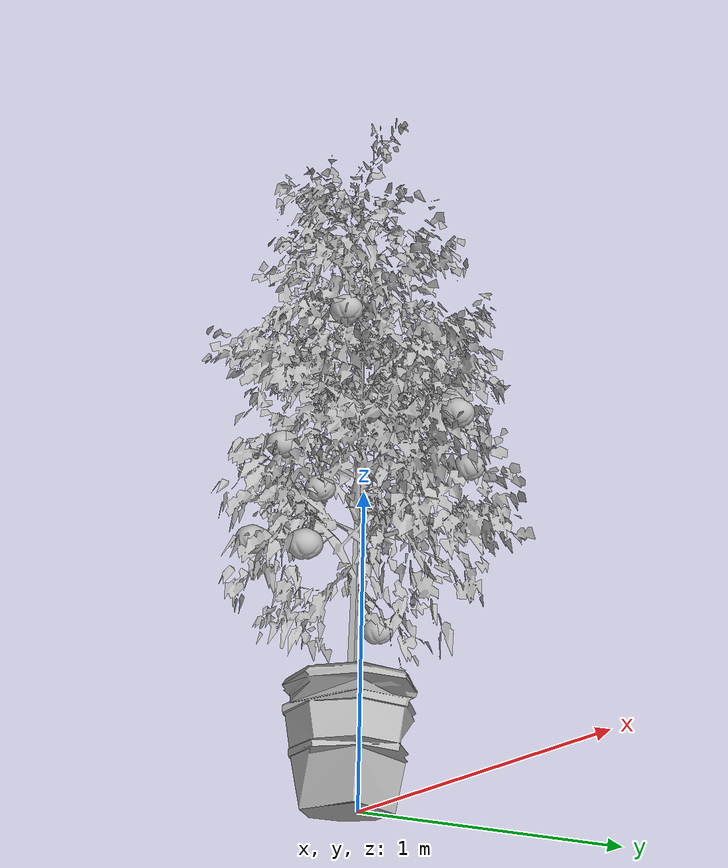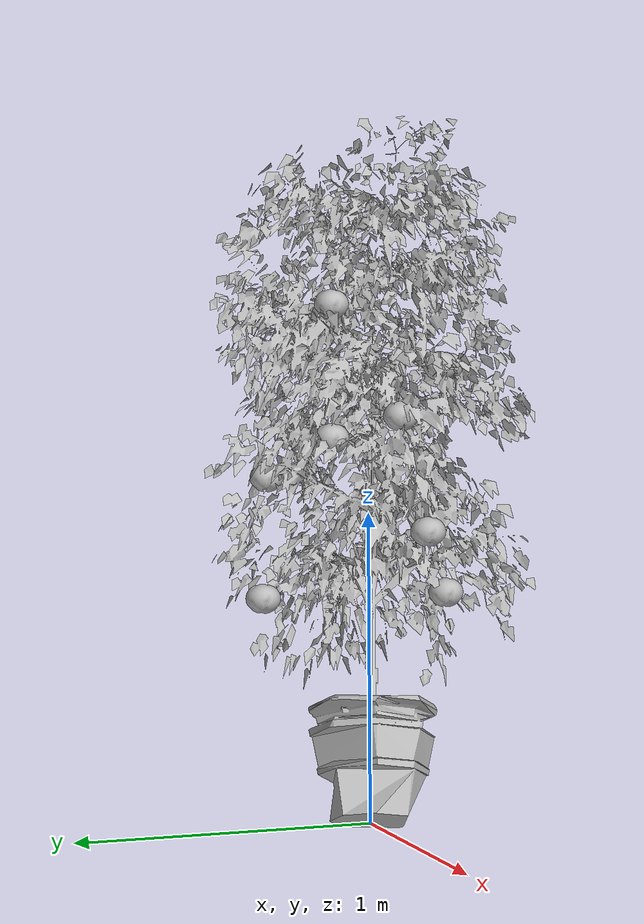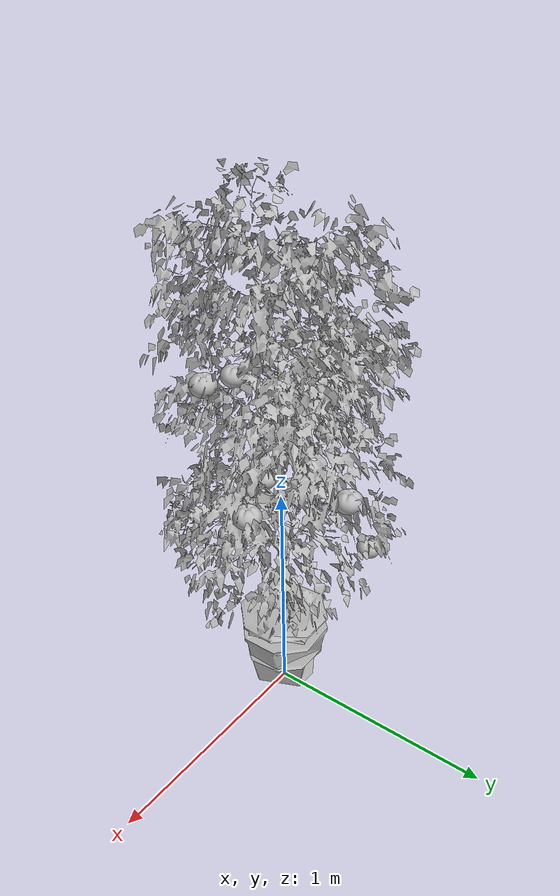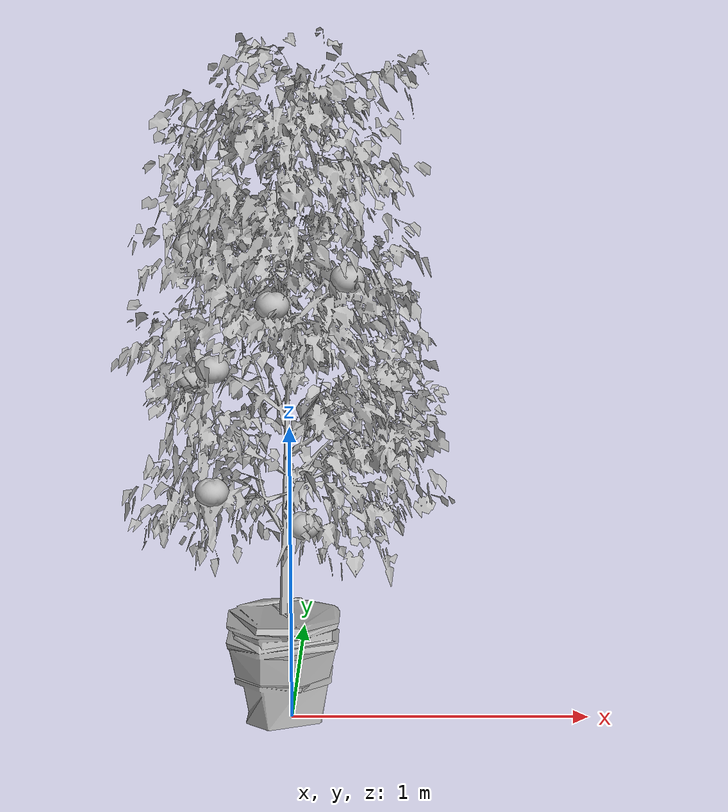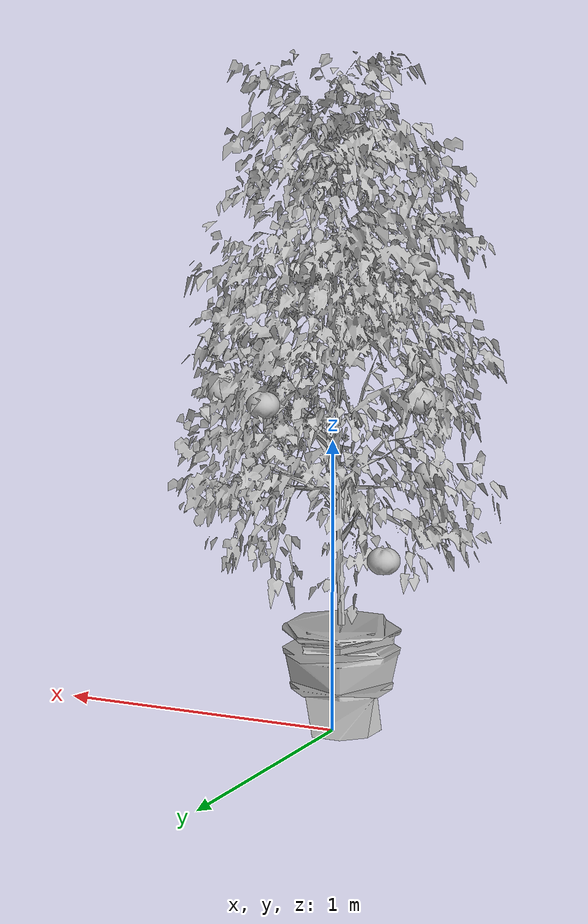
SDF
<?xml version="1.0"?>
<sdf version="1.6">
    <model name="plant_4">
    	<static>false</static>
       <link name="plant_link">
        <pose>0 0 0 0 0 0</pose>
        <inertial>
          <mass>30</mass>
        </inertial>
         <visual name="visual">
          <pose>0 0 0 0 0 -0.277507351</pose>
          <geometry>
            <mesh><uri>model://plant/meshes/plant.obj</uri></mesh>
          </geometry>
        </visual>
        <collision name="collision">
          <pose>0 0 0.125 0 0 0</pose>
          <geometry>
            <box><size>0.3 0.3 0.25</size></box>
          </geometry>
        </collision>
      </link>

      <link name="t_link_0">
        <pose>-0.297 0.244 0.669 0 0 0</pose>
        <inertial>
          <mass>0.1</mass>
        </inertial>
        <collision name="collision">
          <geometry>
            <sphere><radius>0.05</radius></sphere>
          </geometry>
        </collision>
        <visual name="visual">
          <geometry>
            <mesh><uri>model://tomato/meshes/tomato.obj</uri></mesh>
          </geometry>
        </visual>
      </link>
      <joint name="t_joint_0" type="fixed">
        <parent>plant_link</parent>
        <child>t_link_0</child>
        <axis>
          <xyz>0 0 1</xyz>
          <use_parent_model_frame>true</use_parent_model_frame>
        </axis>
        <sensor name="force_torque" type="force_torque">
          <always_on>true</always_on>
          <update_rate>250</update_rate>
          <plugin name="breakable_0" filename="libBreakableJointPlugin.so">
            <breaking_force_N>10</breaking_force_N>
          </plugin>
        </sensor>
      </joint>

      <link name="t_link_1">
        <pose>0.073 0.375 1.175 0 0 0</pose>
        <inertial>
          <mass>0.1</mass>
        </inertial>
        <collision name="collision">
          <geometry>
            <sphere><radius>0.05</radius></sphere>
          </geometry>
        </collision>
        <visual name="visual">
          <geometry>
            <mesh><uri>model://tomato/meshes/tomato.obj</uri></mesh>
          </geometry>
        </visual>
      </link>
      <joint name="t_joint_1" type="fixed">
        <parent>plant_link</parent>
        <child>t_link_1</child>
        <axis>
          <xyz>0 0 1</xyz>
          <use_parent_model_frame>true</use_parent_model_frame>
        </axis>
        <sensor name="force_torque" type="force_torque">
          <always_on>true</always_on>
          <update_rate>250</update_rate>
          <plugin name="breakable_1" filename="libBreakableJointPlugin.so">
            <breaking_force_N>10</breaking_force_N>
          </plugin>
        </sensor>
      </joint>

      <link name="t_link_2">
        <pose>0.196 -0.202 1.528 0 0 0</pose>
        <inertial>
          <mass>0.1</mass>
        </inertial>
        <collision name="collision">
          <geometry>
            <sphere><radius>0.05</radius></sphere>
          </geometry>
        </collision>
        <visual name="visual">
          <geometry>
            <mesh><uri>model://tomato/meshes/tomato.obj</uri></mesh>
          </geometry>
        </visual>
      </link>
      <joint name="t_joint_2" type="fixed">
        <parent>plant_link</parent>
        <child>t_link_2</child>
        <axis>
          <xyz>0 0 1</xyz>
          <use_parent_model_frame>true</use_parent_model_frame>
        </axis>
        <sensor name="force_torque" type="force_torque">
          <always_on>true</always_on>
          <update_rate>250</update_rate>
          <plugin name="breakable_2" filename="libBreakableJointPlugin.so">
            <breaking_force_N>10</breaking_force_N>
          </plugin>
        </sensor>
      </joint>

      <link name="t_link_3">
        <pose>0.054 -0.237 0.732 0 0 0</pose>
        <inertial>
          <mass>0.1</mass>
        </inertial>
        <collision name="collision">
          <geometry>
            <sphere><radius>0.05</radius></sphere>
          </geometry>
        </collision>
        <visual name="visual">
          <geometry>
            <mesh><uri>model://tomato/meshes/tomato.obj</uri></mesh>
          </geometry>
        </visual>
      </link>
      <joint name="t_joint_3" type="fixed">
        <parent>plant_link</parent>
        <child>t_link_3</child>
        <axis>
          <xyz>0 0 1</xyz>
          <use_parent_model_frame>true</use_parent_model_frame>
        </axis>
        <sensor name="force_torque" type="force_torque">
          <always_on>true</always_on>
          <update_rate>250</update_rate>
          <plugin name="breakable_3" filename="libBreakableJointPlugin.so">
            <breaking_force_N>10</breaking_force_N>
          </plugin>
        </sensor>
      </joint>

      <link name="t_link_4">
        <pose>-0.236 -0.275 0.851 0 0 0</pose>
        <inertial>
          <mass>0.1</mass>
        </inertial>
        <collision name="collision">
          <geometry>
            <sphere><radius>0.05</radius></sphere>
          </geometry>
        </collision>
        <visual name="visual">
          <geometry>
            <mesh><uri>model://tomato/meshes/tomato.obj</uri></mesh>
          </geometry>
        </visual>
      </link>
      <joint name="t_joint_4" type="fixed">
        <parent>plant_link</parent>
        <child>t_link_4</child>
        <axis>
          <xyz>0 0 1</xyz>
          <use_parent_model_frame>true</use_parent_model_frame>
        </axis>
        <sensor name="force_torque" type="force_torque">
          <always_on>true</always_on>
          <update_rate>250</update_rate>
          <plugin name="breakable_4" filename="libBreakableJointPlugin.so">
            <breaking_force_N>10</breaking_force_N>
          </plugin>
        </sensor>
      </joint>

      <link name="t_link_5">
        <pose>-0.318 0.010 1.158 0 0 0</pose>
        <inertial>
          <mass>0.1</mass>
        </inertial>
        <collision name="collision">
          <geometry>
            <sphere><radius>0.05</radius></sphere>
          </geometry>
        </collision>
        <visual name="visual">
          <geometry>
            <mesh><uri>model://tomato/meshes/tomato.obj</uri></mesh>
          </geometry>
        </visual>
      </link>
      <joint name="t_joint_5" type="fixed">
        <parent>plant_link</parent>
        <child>t_link_5</child>
        <axis>
          <xyz>0 0 1</xyz>
          <use_parent_model_frame>true</use_parent_model_frame>
        </axis>
        <sensor name="force_torque" type="force_torque">
          <always_on>true</always_on>
          <update_rate>250</update_rate>
          <plugin name="breakable_5" filename="libBreakableJointPlugin.so">
            <breaking_force_N>10</breaking_force_N>
          </plugin>
        </sensor>
      </joint>

      <link name="t_link_6">
        <pose>0.351 0.120 1.158 0 0 0</pose>
        <inertial>
          <mass>0.1</mass>
        </inertial>
        <collision name="collision">
          <geometry>
            <sphere><radius>0.05</radius></sphere>
          </geometry>
        </collision>
        <visual name="visual">
          <geometry>
            <mesh><uri>model://tomato/meshes/tomato.obj</uri></mesh>
          </geometry>
        </visual>
      </link>
      <joint name="t_joint_6" type="fixed">
        <parent>plant_link</parent>
        <child>t_link_6</child>
        <axis>
          <xyz>0 0 1</xyz>
          <use_parent_model_frame>true</use_parent_model_frame>
        </axis>
        <sensor name="force_torque" type="force_torque">
          <always_on>true</always_on>
          <update_rate>250</update_rate>
          <plugin name="breakable_6" filename="libBreakableJointPlugin.so">
            <breaking_force_N>10</breaking_force_N>
          </plugin>
        </sensor>
      </joint>

      <link name="t_link_7">
        <pose>-0.039 -0.257 1.451 0 0 0</pose>
        <inertial>
          <mass>0.1</mass>
        </inertial>
        <collision name="collision">
          <geometry>
            <sphere><radius>0.05</radius></sphere>
          </geometry>
        </collision>
        <visual name="visual">
          <geometry>
            <mesh><uri>model://tomato/meshes/tomato.obj</uri></mesh>
          </geometry>
        </visual>
      </link>
      <joint name="t_joint_7" type="fixed">
        <parent>plant_link</parent>
        <child>t_link_7</child>
        <axis>
          <xyz>0 0 1</xyz>
          <use_parent_model_frame>true</use_parent_model_frame>
        </axis>
        <sensor name="force_torque" type="force_torque">
          <always_on>true</always_on>
          <update_rate>250</update_rate>
          <plugin name="breakable_7" filename="libBreakableJointPlugin.so">
            <breaking_force_N>10</breaking_force_N>
          </plugin>
        </sensor>
      </joint>

      <link name="t_link_8">
        <pose>-0.236 -0.189 1.233 0 0 0</pose>
        <inertial>
          <mass>0.1</mass>
        </inertial>
        <collision name="collision">
          <geometry>
            <sphere><radius>0.05</radius></sphere>
          </geometry>
        </collision>
        <visual name="visual">
          <geometry>
            <mesh><uri>model://tomato/meshes/tomato.obj</uri></mesh>
          </geometry>
        </visual>
      </link>
      <joint name="t_joint_8" type="fixed">
        <parent>plant_link</parent>
        <child>t_link_8</child>
        <axis>
          <xyz>0 0 1</xyz>
          <use_parent_model_frame>true</use_parent_model_frame>
        </axis>
        <sensor name="force_torque" type="force_torque">
          <always_on>true</always_on>
          <update_rate>250</update_rate>
          <plugin name="breakable_8" filename="libBreakableJointPlugin.so">
            <breaking_force_N>10</breaking_force_N>
          </plugin>
        </sensor>
      </joint>

      <link name="t_link_9">
        <pose>-0.318 0.010 1.599 0 0 0</pose>
        <inertial>
          <mass>0.1</mass>
        </inertial>
        <collision name="collision">
          <geometry>
            <sphere><radius>0.05</radius></sphere>
          </geometry>
        </collision>
        <visual name="visual">
          <geometry>
            <mesh><uri>model://tomato/meshes/tomato.obj</uri></mesh>
          </geometry>
        </visual>
      </link>
      <joint name="t_joint_9" type="fixed">
        <parent>plant_link</parent>
        <child>t_link_9</child>
        <axis>
          <xyz>0 0 1</xyz>
          <use_parent_model_frame>true</use_parent_model_frame>
        </axis>
        <sensor name="force_torque" type="force_torque">
          <always_on>true</always_on>
          <update_rate>250</update_rate>
          <plugin name="breakable_9" filename="libBreakableJointPlugin.so">
            <breaking_force_N>10</breaking_force_N>
          </plugin>
        </sensor>
      </joint>
  </model>
</sdf>
